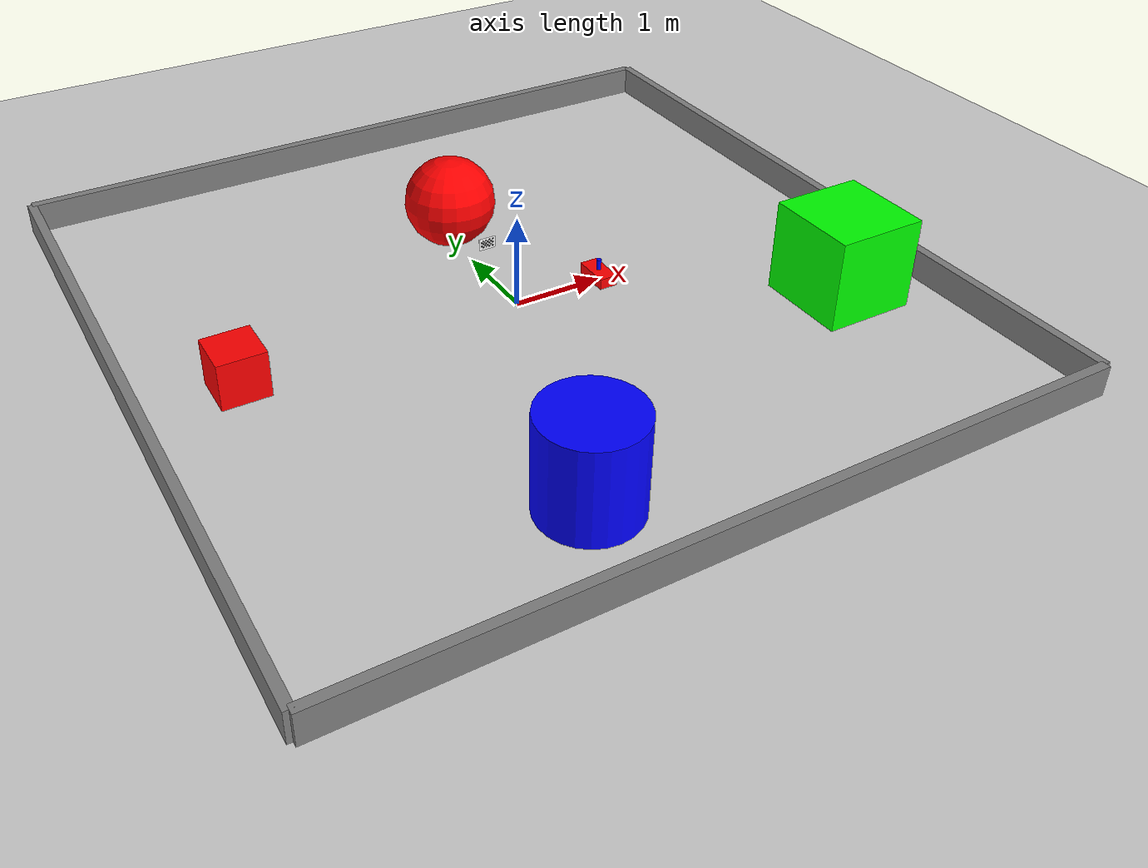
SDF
<sdf version='1.6'>
  <world name='default'>
    <plugin
      filename="gz-sim-physics-system"
      name="gz::sim::systems::Physics">
    </plugin>

    <plugin
      filename="gz-sim-sensors-system"
      name="gz::sim::systems::Sensors">
      <render_engine>ogre2</render_engine>
    </plugin>

    <plugin
      filename="gz-sim-imu-system"
      name="gz::sim::systems::Imu">
    </plugin>

    <plugin
      filename="gz-sim-user-commands-system"
      name="gz::sim::systems::UserCommands">
    </plugin>

    <plugin
      filename="gz-sim-scene-broadcaster-system"
      name="gz::sim::systems::SceneBroadcaster">
    </plugin>

    <light name='sun' type='directional'>
      <cast_shadows>false</cast_shadows>
      <pose>0 0 10 0 0 0</pose>
      <diffuse>0.8 0.8 0.8 1</diffuse>
      <specular>0.2 0.2 0.2 1</specular>
      <attenuation>
        <range>1000</range>
        <constant>0.9</constant>
        <linear>0.01</linear>
        <quadratic>0.001</quadratic>
      </attenuation>
      <direction>-0.5 0.1 -0.9</direction>
    </light>

    <model name='ground_plane'>
      <static>true</static>
      <link name='link'>
        <collision name='collision'>
          <geometry>
            <plane>
              <normal>0 0 1</normal>
              <size>100 100</size>
            </plane>
          </geometry>
        </collision>
        <visual name='visual'>
          <geometry>
            <plane>
              <normal>0 0 1</normal>
              <size>100 100</size>
            </plane>
          </geometry>
          <material>
            <ambient>0.8 0.8 0.8 1</ambient>
            <diffuse>0.8 0.8 0.8 1</diffuse>
            <specular>0.8 0.8 0.8 1</specular>
          </material>
        </visual>
      </link>
    </model>

    <!-- Physics settings - Aggressive optimization for RTF 1.0 -->
    <physics type='ode'>
      <max_step_size>0.003</max_step_size>
      <real_time_factor>1</real_time_factor>
      <real_time_update_rate>333</real_time_update_rate>
      <gravity>0 0 -9.8</gravity>
      <ode>
        <solver>
          <type>quick</type>
          <iters>15</iters>
          <sor>1.3</sor>
        </solver>
        <constraints>
          <cfm>0.0002</cfm>
          <erp>0.2</erp>
          <contact_max_correcting_vel>100.0</contact_max_correcting_vel>
          <contact_surface_layer>0.001</contact_surface_layer>
        </constraints>
      </ode>
    </physics>

    <!-- A red ball -->
    <model name="sphere">
      <pose>0 1.5 0.5 0 0 0</pose>
      <link name="link">
        <collision name="collision">
          <geometry>
            <sphere>
              <radius>0.5</radius>
            </sphere>
          </geometry>
        </collision>
        <visual name="visual">
          <geometry>
            <sphere>
              <radius>0.5</radius>
            </sphere>
          </geometry>
          <material>
            <ambient>1 0 0 1</ambient>
            <diffuse>1 0 0 1</diffuse>
          </material>
        </visual>
      </link>
    </model>

    <!-- A green cube -->
    <model name="cube1">
      <pose>3.0 -1.5 0.5 0 0 0</pose>
      <link name="link">
        <collision name="collision">
          <geometry>
            <box>
              <size>1 1 1</size>
            </box>
          </geometry>
        </collision>
        <visual name="visual">
          <geometry>
            <box>
              <size>1 1 1</size>
            </box>
          </geometry>
          <material>
            <ambient>0 1 0 1</ambient>
            <diffuse>0 1 0 1</diffuse>
          </material>
        </visual>
      </link>
    </model>

    <!-- A blue cylinder -->
    <model name="cylinder">
      <pose>-1.0 -3.0 0.5 0 0 0</pose>
      <link name="link">
        <collision name="collision">
          <geometry>
            <cylinder>
              <radius>0.5</radius>
              <length>1.0</length>
            </cylinder>
          </geometry>
        </collision>
        <visual name="visual">
          <geometry>
            <cylinder>
              <radius>0.5</radius>
              <length>1.0</length>
            </cylinder>
          </geometry>
          <material>
            <ambient>0 0 1 1</ambient>
            <diffuse>0 0 1 1</diffuse>
          </material>
        </visual>
      </link>
    </model>

    <!-- A red small cube -->
    <model name="cube2">
      <pose>-3.0 0.0 0.25 0 0 0</pose>
      <link name="link">
        <collision name="collision">
          <geometry>
            <box>
              <size>0.5 0.5 0.5</size>
            </box>
          </geometry>
        </collision>
        <visual name="visual">
          <geometry>
            <box>
              <size>0.5 0.5 0.5</size>
            </box>
          </geometry>
          <material>
            <ambient>1 0 0 1</ambient>
            <diffuse>1 0 0 1</diffuse>
          </material>
        </visual>
      </link>
    </model>

    <!-- Walls -->
    <model name='grey_wall_0'>
      <static>1</static>
      <link name='link'>
        <pose>0 4 0.165 0 0 0</pose>
        <collision name='collision'>
          <geometry>
            <box>
              <size>8 0.1 0.33</size>
            </box>
          </geometry>
        </collision>
        <visual name='visual'>
          <geometry>
            <box>
              <size>8 0.1 0.33</size>
            </box>
          </geometry>
          <material>
            <ambient>0.5 0.5 0.5 1</ambient>
            <diffuse>0.5 0.5 0.5 1</diffuse>
          </material>
        </visual>
      </link>
    </model>

    <model name='grey_wall_1'>
      <static>1</static>
      <link name='link'>
        <pose>0 -4 0.165 0 0 0</pose>
        <collision name='collision'>
          <geometry>
            <box>
              <size>8 0.1 0.33</size>
            </box>
          </geometry>
        </collision>
        <visual name='visual'>
          <geometry>
            <box>
              <size>8 0.1 0.33</size>
            </box>
          </geometry>
          <material>
            <ambient>0.5 0.5 0.5 1</ambient>
            <diffuse>0.5 0.5 0.5 1</diffuse>
          </material>
        </visual>
      </link>
    </model>

    <model name='grey_wall_2'>
      <static>1</static>
      <link name='link'>
        <pose>4 0 0.165 0 0 1.5708</pose>
        <collision name='collision'>
          <geometry>
            <box>
              <size>8 0.1 0.33</size>
            </box>
          </geometry>
        </collision>
        <visual name='visual'>
          <geometry>
            <box>
              <size>8 0.1 0.33</size>
            </box>
          </geometry>
          <material>
            <ambient>0.5 0.5 0.5 1</ambient>
            <diffuse>0.5 0.5 0.5 1</diffuse>
          </material>
        </visual>
      </link>
    </model>

    <model name='grey_wall_3'>
      <static>1</static>
      <link name='link'>
        <pose>-4 0 0.165 0 0 1.5708</pose>
        <collision name='collision'>
          <geometry>
            <box>
              <size>8 0.1 0.33</size>
            </box>
          </geometry>
        </collision>
        <visual name='visual'>
          <geometry>
            <box>
              <size>8 0.1 0.33</size>
            </box>
          </geometry>
          <material>
            <ambient>0.5 0.5 0.5 1</ambient>
            <diffuse>0.5 0.5 0.5 1</diffuse>
          </material>
        </visual>
      </link>
    </model>

    <!-- Grasp target table -->
    <model name="table">
      <static>1</static>
      <pose>1.0 0.0 0.06 0 0 0</pose>
      <link name="link">
        <collision name="collision">
          <geometry>
            <box>
              <size>0.2 0.4 0.12</size>
            </box>
          </geometry>
          <surface>
            <friction>
              <ode>
                <mu>0.4</mu>
                <mu2>0.4</mu2>
              </ode>
            </friction>
          </surface>
        </collision>
        <visual name="visual">
          <geometry>
            <box>
              <size>0.2 0.4 0.12</size>
            </box>
          </geometry>
          <material>
            <ambient>1 0 0 1</ambient>
            <diffuse>1 0 0 1</diffuse>
          </material>
        </visual>
      </link>
    </model>

    <!-- Target cylinder -->
    <model name="target_cylinder">
      <pose>1.0 0 0.18 0 0 0</pose>
      <link name="link">
        <inertial>
          <mass>0.01</mass>
          <inertia>
            <ixx>0.001</ixx>
            <ixy>0.0</ixy>
            <ixz>0.0</ixz>
            <iyy>0.001</iyy>
            <iyz>0.0</iyz>
            <izz>0.001</izz>
          </inertia>
        </inertial>
        <collision name="collision">
          <geometry>
            <cylinder>
              <radius>0.025</radius>
              <length>0.12</length>
            </cylinder>
          </geometry>
          <surface>
            <friction>
              <ode>
                <mu>0.9</mu>
                <mu2>0.9</mu2>
              </ode>
            </friction>
          </surface>
        </collision>
        <visual name="visual">
          <geometry>
            <cylinder>
              <radius>0.025</radius>
              <length>0.12</length>
            </cylinder>
          </geometry>
          <material>
            <ambient>0 0 1 1</ambient>
            <diffuse>0 0 1 1</diffuse>
          </material>
        </visual>
      </link>
    </model>

    <!-- Checkerboard -->
    <model name="checkerboard">
      <pose>0.1 1.0 0.1 1.5707963267948966 0 0</pose>
      <static>true</static>
      <link name="link_checkerboard">
        <collision name="collision">
          <geometry>
            <mesh>
              <uri>model/checkerboard/checkerboard.dae</uri>
              <scale>0.001 0.001 0.001</scale>
            </mesh>
          </geometry>
          <surface>
            <friction>
              <ode>
                <mu>100</mu>
                <mu2>50</mu2>
              </ode>
            </friction>
          </surface>
        </collision>
        <visual name="visual_black">
          <cast_shadows>false</cast_shadows>
          <transparency>0</transparency>
          <geometry>
            <mesh>
              <uri>model/checkerboard/checkerboard_black.stl</uri>
              <scale>0.001 0.001 0.001</scale>
            </mesh>
          </geometry>
          <material>
            <ambient>0 0 0 1</ambient>
            <diffuse>0 0 0 1</diffuse>
            <specular>0 0 0 1</specular>
          </material>
        </visual>
        <visual name="visual_white">
          <cast_shadows>false</cast_shadows>
          <transparency>0</transparency>
          <geometry>
            <mesh>
              <uri>model/checkerboard/checkerboard_white.stl</uri>
              <scale>0.001 0.001 0.001</scale>
            </mesh>
          </geometry>
          <material>
            <ambient>1 1 1 1</ambient>
            <diffuse>1 1 1 1</diffuse>
            <specular>0 0 0 1</specular>
          </material>
        </visual>
      </link>
    </model>

  </world>
</sdf>
